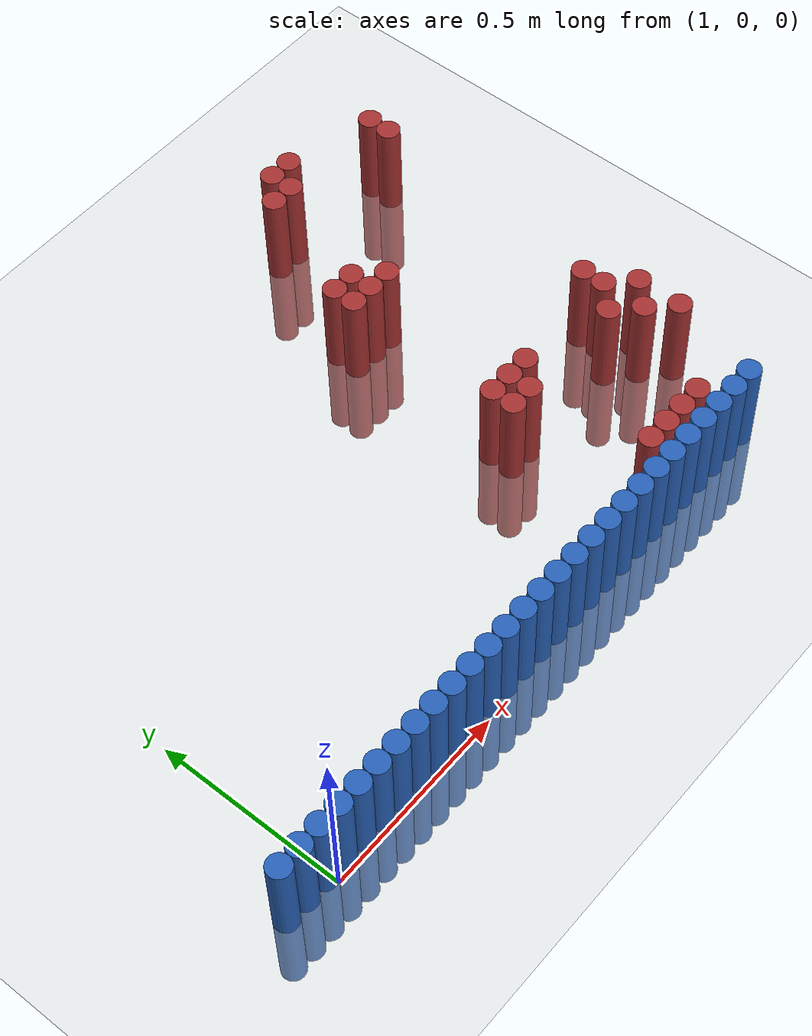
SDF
<sdf version="1.6">
 <world name="default">
  <model name="ground_plane">
   <static>1</static>
   <link name="link">
    <collision name="collision">
     <geometry><plane><normal>0 0 1</normal><size>100 100</size></plane></geometry>
     <surface><friction><ode><mu>100</mu><mu2>50</mu2></ode></friction></surface>
    </collision>
    <visual name="visual">
     <cast_shadows>0</cast_shadows>
     <geometry><plane><normal>0 0 1</normal><size>100 100</size></plane></geometry>
     <material>
      <script><uri>file://media/materials/scripts/gazebo.material</uri><name>Gazebo/Grey</name></script>
     </material>
    </visual>
   </link>
  </model>
  <model name="unit_cylinder_55">
   <static>1</static>
   <pose>0.870000 0.030000 0.000000 0.000000 0.000000 0.000000</pose>
   <link name="link">
    <inertial>
     <mass>1</mass>
     <inertia><ixx>0.145833</ixx><ixy>0</ixy><ixz>0</ixz><iyy>0.145833</iyy><iyz>0</iyz><izz>0.125</izz></inertia>
    </inertial>
    <collision name="collision">
     <geometry><cylinder><radius>0.030000</radius><length>0.5</length></cylinder></geometry>
    </collision>
    <visual name="visual">
     <geometry><cylinder><radius>0.030000</radius><length>0.5</length></cylinder></geometry>
     <material>
      <ambient>0.152000 0.379000 0.720000 1</ambient>
      <diffuse>0.152000 0.379000 0.720000 1</diffuse>
     </material>
     <material>
      <script><name>Gazebo/Grey</name><uri>file://media/materials/scripts/gazebo.material</uri></script>
     </material>
    </visual>
   </link>
  </model>
  <model name="unit_cylinder_57">
   <static>1</static>
   <pose>0.930000 0.030000 0.000000 0.000000 0.000000 0.000000</pose>
   <link name="link">
    <inertial>
     <mass>1</mass>
     <inertia><ixx>0.145833</ixx><ixy>0</ixy><ixz>0</ixz><iyy>0.145833</iyy><iyz>0</iyz><izz>0.125</izz></inertia>
    </inertial>
    <collision name="collision">
     <geometry><cylinder><radius>0.030000</radius><length>0.5</length></cylinder></geometry>
    </collision>
    <visual name="visual">
     <geometry><cylinder><radius>0.030000</radius><length>0.5</length></cylinder></geometry>
     <material>
      <ambient>0.152000 0.379000 0.720000 1</ambient>
      <diffuse>0.152000 0.379000 0.720000 1</diffuse>
     </material>
     <material>
      <script><name>Gazebo/Grey</name><uri>file://media/materials/scripts/gazebo.material</uri></script>
     </material>
    </visual>
   </link>
  </model>
  <model name="unit_cylinder_59">
   <static>1</static>
   <pose>0.990000 0.030000 0.000000 0.000000 0.000000 0.000000</pose>
   <link name="link">
    <inertial>
     <mass>1</mass>
     <inertia><ixx>0.145833</ixx><ixy>0</ixy><ixz>0</ixz><iyy>0.145833</iyy><iyz>0</iyz><izz>0.125</izz></inertia>
    </inertial>
    <collision name="collision">
     <geometry><cylinder><radius>0.030000</radius><length>0.5</length></cylinder></geometry>
    </collision>
    <visual name="visual">
     <geometry><cylinder><radius>0.030000</radius><length>0.5</length></cylinder></geometry>
     <material>
      <ambient>0.152000 0.379000 0.720000 1</ambient>
      <diffuse>0.152000 0.379000 0.720000 1</diffuse>
     </material>
     <material>
      <script><name>Gazebo/Grey</name><uri>file://media/materials/scripts/gazebo.material</uri></script>
     </material>
    </visual>
   </link>
  </model>
  <model name="unit_cylinder_61">
   <static>1</static>
   <pose>1.050000 0.030000 0.000000 0.000000 0.000000 0.000000</pose>
   <link name="link">
    <inertial>
     <mass>1</mass>
     <inertia><ixx>0.145833</ixx><ixy>0</ixy><ixz>0</ixz><iyy>0.145833</iyy><iyz>0</iyz><izz>0.125</izz></inertia>
    </inertial>
    <collision name="collision">
     <geometry><cylinder><radius>0.030000</radius><length>0.5</length></cylinder></geometry>
    </collision>
    <visual name="visual">
     <geometry><cylinder><radius>0.030000</radius><length>0.5</length></cylinder></geometry>
     <material>
      <ambient>0.152000 0.379000 0.720000 1</ambient>
      <diffuse>0.152000 0.379000 0.720000 1</diffuse>
     </material>
     <material>
      <script><name>Gazebo/Grey</name><uri>file://media/materials/scripts/gazebo.material</uri></script>
     </material>
    </visual>
   </link>
  </model>
  <model name="unit_cylinder_63">
   <static>1</static>
   <pose>1.110000 0.030000 0.000000 0.000000 0.000000 0.000000</pose>
   <link name="link">
    <inertial>
     <mass>1</mass>
     <inertia><ixx>0.145833</ixx><ixy>0</ixy><ixz>0</ixz><iyy>0.145833</iyy><iyz>0</iyz><izz>0.125</izz></inertia>
    </inertial>
    <collision name="collision">
     <geometry><cylinder><radius>0.030000</radius><length>0.5</length></cylinder></geometry>
    </collision>
    <visual name="visual">
     <geometry><cylinder><radius>0.030000</radius><length>0.5</length></cylinder></geometry>
     <material>
      <ambient>0.152000 0.379000 0.720000 1</ambient>
      <diffuse>0.152000 0.379000 0.720000 1</diffuse>
     </material>
     <material>
      <script><name>Gazebo/Grey</name><uri>file://media/materials/scripts/gazebo.material</uri></script>
     </material>
    </visual>
   </link>
  </model>
  <model name="unit_cylinder_65">
   <static>1</static>
   <pose>1.170000 0.030000 0.000000 0.000000 0.000000 0.000000</pose>
   <link name="link">
    <inertial>
     <mass>1</mass>
     <inertia><ixx>0.145833</ixx><ixy>0</ixy><ixz>0</ixz><iyy>0.145833</iyy><iyz>0</iyz><izz>0.125</izz></inertia>
    </inertial>
    <collision name="collision">
     <geometry><cylinder><radius>0.030000</radius><length>0.5</length></cylinder></geometry>
    </collision>
    <visual name="visual">
     <geometry><cylinder><radius>0.030000</radius><length>0.5</length></cylinder></geometry>
     <material>
      <ambient>0.152000 0.379000 0.720000 1</ambient>
      <diffuse>0.152000 0.379000 0.720000 1</diffuse>
     </material>
     <material>
      <script><name>Gazebo/Grey</name><uri>file://media/materials/scripts/gazebo.material</uri></script>
     </material>
    </visual>
   </link>
  </model>
  <model name="unit_cylinder_67">
   <static>1</static>
   <pose>1.230000 0.030000 0.000000 0.000000 0.000000 0.000000</pose>
   <link name="link">
    <inertial>
     <mass>1</mass>
     <inertia><ixx>0.145833</ixx><ixy>0</ixy><ixz>0</ixz><iyy>0.145833</iyy><iyz>0</iyz><izz>0.125</izz></inertia>
    </inertial>
    <collision name="collision">
     <geometry><cylinder><radius>0.030000</radius><length>0.5</length></cylinder></geometry>
    </collision>
    <visual name="visual">
     <geometry><cylinder><radius>0.030000</radius><length>0.5</length></cylinder></geometry>
     <material>
      <ambient>0.152000 0.379000 0.720000 1</ambient>
      <diffuse>0.152000 0.379000 0.720000 1</diffuse>
     </material>
     <material>
      <script><name>Gazebo/Grey</name><uri>file://media/materials/scripts/gazebo.material</uri></script>
     </material>
    </visual>
   </link>
  </model>
  <model name="unit_cylinder_69">
   <static>1</static>
   <pose>1.290000 0.030000 0.000000 0.000000 0.000000 0.000000</pose>
   <link name="link">
    <inertial>
     <mass>1</mass>
     <inertia><ixx>0.145833</ixx><ixy>0</ixy><ixz>0</ixz><iyy>0.145833</iyy><iyz>0</iyz><izz>0.125</izz></inertia>
    </inertial>
    <collision name="collision">
     <geometry><cylinder><radius>0.030000</radius><length>0.5</length></cylinder></geometry>
    </collision>
    <visual name="visual">
     <geometry><cylinder><radius>0.030000</radius><length>0.5</length></cylinder></geometry>
     <material>
      <ambient>0.152000 0.379000 0.720000 1</ambient>
      <diffuse>0.152000 0.379000 0.720000 1</diffuse>
     </material>
     <material>
      <script><name>Gazebo/Grey</name><uri>file://media/materials/scripts/gazebo.material</uri></script>
     </material>
    </visual>
   </link>
  </model>
  <model name="unit_cylinder_71">
   <static>1</static>
   <pose>1.350000 0.030000 0.000000 0.000000 0.000000 0.000000</pose>
   <link name="link">
    <inertial>
     <mass>1</mass>
     <inertia><ixx>0.145833</ixx><ixy>0</ixy><ixz>0</ixz><iyy>0.145833</iyy><iyz>0</iyz><izz>0.125</izz></inertia>
    </inertial>
    <collision name="collision">
     <geometry><cylinder><radius>0.030000</radius><length>0.5</length></cylinder></geometry>
    </collision>
    <visual name="visual">
     <geometry><cylinder><radius>0.030000</radius><length>0.5</length></cylinder></geometry>
     <material>
      <ambient>0.152000 0.379000 0.720000 1</ambient>
      <diffuse>0.152000 0.379000 0.720000 1</diffuse>
     </material>
     <material>
      <script><name>Gazebo/Grey</name><uri>file://media/materials/scripts/gazebo.material</uri></script>
     </material>
    </visual>
   </link>
  </model>
  <model name="unit_cylinder_73">
   <static>1</static>
   <pose>1.410000 0.030000 0.000000 0.000000 0.000000 0.000000</pose>
   <link name="link">
    <inertial>
     <mass>1</mass>
     <inertia><ixx>0.145833</ixx><ixy>0</ixy><ixz>0</ixz><iyy>0.145833</iyy><iyz>0</iyz><izz>0.125</izz></inertia>
    </inertial>
    <collision name="collision">
     <geometry><cylinder><radius>0.030000</radius><length>0.5</length></cylinder></geometry>
    </collision>
    <visual name="visual">
     <geometry><cylinder><radius>0.030000</radius><length>0.5</length></cylinder></geometry>
     <material>
      <ambient>0.152000 0.379000 0.720000 1</ambient>
      <diffuse>0.152000 0.379000 0.720000 1</diffuse>
     </material>
     <material>
      <script><name>Gazebo/Grey</name><uri>file://media/materials/scripts/gazebo.material</uri></script>
     </material>
    </visual>
   </link>
  </model>
  <model name="unit_cylinder_75">
   <static>1</static>
   <pose>1.470000 0.030000 0.000000 0.000000 0.000000 0.000000</pose>
   <link name="link">
    <inertial>
     <mass>1</mass>
     <inertia><ixx>0.145833</ixx><ixy>0</ixy><ixz>0</ixz><iyy>0.145833</iyy><iyz>0</iyz><izz>0.125</izz></inertia>
    </inertial>
    <collision name="collision">
     <geometry><cylinder><radius>0.030000</radius><length>0.5</length></cylinder></geometry>
    </collision>
    <visual name="visual">
     <geometry><cylinder><radius>0.030000</radius><length>0.5</length></cylinder></geometry>
     <material>
      <ambient>0.152000 0.379000 0.720000 1</ambient>
      <diffuse>0.152000 0.379000 0.720000 1</diffuse>
     </material>
     <material>
      <script><name>Gazebo/Grey</name><uri>file://media/materials/scripts/gazebo.material</uri></script>
     </material>
    </visual>
   </link>
  </model>
  <model name="unit_cylinder_77">
   <static>1</static>
   <pose>1.530000 0.030000 0.000000 0.000000 0.000000 0.000000</pose>
   <link name="link">
    <inertial>
     <mass>1</mass>
     <inertia><ixx>0.145833</ixx><ixy>0</ixy><ixz>0</ixz><iyy>0.145833</iyy><iyz>0</iyz><izz>0.125</izz></inertia>
    </inertial>
    <collision name="collision">
     <geometry><cylinder><radius>0.030000</radius><length>0.5</length></cylinder></geometry>
    </collision>
    <visual name="visual">
     <geometry><cylinder><radius>0.030000</radius><length>0.5</length></cylinder></geometry>
     <material>
      <ambient>0.152000 0.379000 0.720000 1</ambient>
      <diffuse>0.152000 0.379000 0.720000 1</diffuse>
     </material>
     <material>
      <script><name>Gazebo/Grey</name><uri>file://media/materials/scripts/gazebo.material</uri></script>
     </material>
    </visual>
   </link>
  </model>
  <model name="unit_cylinder_79">
   <static>1</static>
   <pose>1.590000 0.030000 0.000000 0.000000 0.000000 0.000000</pose>
   <link name="link">
    <inertial>
     <mass>1</mass>
     <inertia><ixx>0.145833</ixx><ixy>0</ixy><ixz>0</ixz><iyy>0.145833</iyy><iyz>0</iyz><izz>0.125</izz></inertia>
    </inertial>
    <collision name="collision">
     <geometry><cylinder><radius>0.030000</radius><length>0.5</length></cylinder></geometry>
    </collision>
    <visual name="visual">
     <geometry><cylinder><radius>0.030000</radius><length>0.5</length></cylinder></geometry>
     <material>
      <ambient>0.152000 0.379000 0.720000 1</ambient>
      <diffuse>0.152000 0.379000 0.720000 1</diffuse>
     </material>
     <material>
      <script><name>Gazebo/Grey</name><uri>file://media/materials/scripts/gazebo.material</uri></script>
     </material>
    </visual>
   </link>
  </model>
  <model name="unit_cylinder_81">
   <static>1</static>
   <pose>1.650000 0.030000 0.000000 0.000000 0.000000 0.000000</pose>
   <link name="link">
    <inertial>
     <mass>1</mass>
     <inertia><ixx>0.145833</ixx><ixy>0</ixy><ixz>0</ixz><iyy>0.145833</iyy><iyz>0</iyz><izz>0.125</izz></inertia>
    </inertial>
    <collision name="collision">
     <geometry><cylinder><radius>0.030000</radius><length>0.5</length></cylinder></geometry>
    </collision>
    <visual name="visual">
     <geometry><cylinder><radius>0.030000</radius><length>0.5</length></cylinder></geometry>
     <material>
      <ambient>0.152000 0.379000 0.720000 1</ambient>
      <diffuse>0.152000 0.379000 0.720000 1</diffuse>
     </material>
     <material>
      <script><name>Gazebo/Grey</name><uri>file://media/materials/scripts/gazebo.material</uri></script>
     </material>
    </visual>
   </link>
  </model>
  <model name="unit_cylinder_83">
   <static>1</static>
   <pose>1.710000 0.030000 0.000000 0.000000 0.000000 0.000000</pose>
   <link name="link">
    <inertial>
     <mass>1</mass>
     <inertia><ixx>0.145833</ixx><ixy>0</ixy><ixz>0</ixz><iyy>0.145833</iyy><iyz>0</iyz><izz>0.125</izz></inertia>
    </inertial>
    <collision name="collision">
     <geometry><cylinder><radius>0.030000</radius><length>0.5</length></cylinder></geometry>
    </collision>
    <visual name="visual">
     <geometry><cylinder><radius>0.030000</radius><length>0.5</length></cylinder></geometry>
     <material>
      <ambient>0.152000 0.379000 0.720000 1</ambient>
      <diffuse>0.152000 0.379000 0.720000 1</diffuse>
     </material>
     <material>
      <script><name>Gazebo/Grey</name><uri>file://media/materials/scripts/gazebo.material</uri></script>
     </material>
    </visual>
   </link>
  </model>
  <model name="unit_cylinder_85">
   <static>1</static>
   <pose>1.770000 0.030000 0.000000 0.000000 0.000000 0.000000</pose>
   <link name="link">
    <inertial>
     <mass>1</mass>
     <inertia><ixx>0.145833</ixx><ixy>0</ixy><ixz>0</ixz><iyy>0.145833</iyy><iyz>0</iyz><izz>0.125</izz></inertia>
    </inertial>
    <collision name="collision">
     <geometry><cylinder><radius>0.030000</radius><length>0.5</length></cylinder></geometry>
    </collision>
    <visual name="visual">
     <geometry><cylinder><radius>0.030000</radius><length>0.5</length></cylinder></geometry>
     <material>
      <ambient>0.152000 0.379000 0.720000 1</ambient>
      <diffuse>0.152000 0.379000 0.720000 1</diffuse>
     </material>
     <material>
      <script><name>Gazebo/Grey</name><uri>file://media/materials/scripts/gazebo.material</uri></script>
     </material>
    </visual>
   </link>
  </model>
  <model name="unit_cylinder_87">
   <static>1</static>
   <pose>1.830000 0.030000 0.000000 0.000000 0.000000 0.000000</pose>
   <link name="link">
    <inertial>
     <mass>1</mass>
     <inertia><ixx>0.145833</ixx><ixy>0</ixy><ixz>0</ixz><iyy>0.145833</iyy><iyz>0</iyz><izz>0.125</izz></inertia>
    </inertial>
    <collision name="collision">
     <geometry><cylinder><radius>0.030000</radius><length>0.5</length></cylinder></geometry>
    </collision>
    <visual name="visual">
     <geometry><cylinder><radius>0.030000</radius><length>0.5</length></cylinder></geometry>
     <material>
      <ambient>0.152000 0.379000 0.720000 1</ambient>
      <diffuse>0.152000 0.379000 0.720000 1</diffuse>
     </material>
     <material>
      <script><name>Gazebo/Grey</name><uri>file://media/materials/scripts/gazebo.material</uri></script>
     </material>
    </visual>
   </link>
  </model>
  <model name="unit_cylinder_89">
   <static>1</static>
   <pose>1.890000 0.030000 0.000000 0.000000 0.000000 0.000000</pose>
   <link name="link">
    <inertial>
     <mass>1</mass>
     <inertia><ixx>0.145833</ixx><ixy>0</ixy><ixz>0</ixz><iyy>0.145833</iyy><iyz>0</iyz><izz>0.125</izz></inertia>
    </inertial>
    <collision name="collision">
     <geometry><cylinder><radius>0.030000</radius><length>0.5</length></cylinder></geometry>
    </collision>
    <visual name="visual">
     <geometry><cylinder><radius>0.030000</radius><length>0.5</length></cylinder></geometry>
     <material>
      <ambient>0.152000 0.379000 0.720000 1</ambient>
      <diffuse>0.152000 0.379000 0.720000 1</diffuse>
     </material>
     <material>
      <script><name>Gazebo/Grey</name><uri>file://media/materials/scripts/gazebo.material</uri></script>
     </material>
    </visual>
   </link>
  </model>
  <model name="unit_cylinder_91">
   <static>1</static>
   <pose>1.950000 0.030000 0.000000 0.000000 0.000000 0.000000</pose>
   <link name="link">
    <inertial>
     <mass>1</mass>
     <inertia><ixx>0.145833</ixx><ixy>0</ixy><ixz>0</ixz><iyy>0.145833</iyy><iyz>0</iyz><izz>0.125</izz></inertia>
    </inertial>
    <collision name="collision">
     <geometry><cylinder><radius>0.030000</radius><length>0.5</length></cylinder></geometry>
    </collision>
    <visual name="visual">
     <geometry><cylinder><radius>0.030000</radius><length>0.5</length></cylinder></geometry>
     <material>
      <ambient>0.152000 0.379000 0.720000 1</ambient>
      <diffuse>0.152000 0.379000 0.720000 1</diffuse>
     </material>
     <material>
      <script><name>Gazebo/Grey</name><uri>file://media/materials/scripts/gazebo.material</uri></script>
     </material>
    </visual>
   </link>
  </model>
  <model name="unit_cylinder_93">
   <static>1</static>
   <pose>2.010000 0.030000 0.000000 0.000000 0.000000 0.000000</pose>
   <link name="link">
    <inertial>
     <mass>1</mass>
     <inertia><ixx>0.145833</ixx><ixy>0</ixy><ixz>0</ixz><iyy>0.145833</iyy><iyz>0</iyz><izz>0.125</izz></inertia>
    </inertial>
    <collision name="collision">
     <geometry><cylinder><radius>0.030000</radius><length>0.5</length></cylinder></geometry>
    </collision>
    <visual name="visual">
     <geometry><cylinder><radius>0.030000</radius><length>0.5</length></cylinder></geometry>
     <material>
      <ambient>0.152000 0.379000 0.720000 1</ambient>
      <diffuse>0.152000 0.379000 0.720000 1</diffuse>
     </material>
     <material>
      <script><name>Gazebo/Grey</name><uri>file://media/materials/scripts/gazebo.material</uri></script>
     </material>
    </visual>
   </link>
  </model>
  <model name="unit_cylinder_198">
   <static>1</static>
   <pose>2.250000 1.290000 0.000000 0.000000 0.000000 0.000000</pose>
   <link name="link">
    <inertial>
     <mass>1</mass>
     <inertia><ixx>0.145833</ixx><ixy>0</ixy><ixz>0</ixz><iyy>0.145833</iyy><iyz>0</iyz><izz>0.125</izz></inertia>
    </inertial>
    <collision name="collision">
     <geometry><cylinder><radius>0.030000</radius><length>0.5</length></cylinder></geometry>
    </collision>
    <visual name="visual">
     <geometry><cylinder><radius>0.030000</radius><length>0.5</length></cylinder></geometry>
     <material>
      <ambient>0.648000 0.192000 0.192000 1</ambient>
      <diffuse>0.648000 0.192000 0.192000 1</diffuse>
     </material>
     <material>
      <script><name>Gazebo/Grey</name><uri>file://media/materials/scripts/gazebo.material</uri></script>
     </material>
    </visual>
   </link>
  </model>
  <model name="unit_cylinder_199">
   <static>1</static>
   <pose>2.310000 1.290000 0.000000 0.000000 0.000000 0.000000</pose>
   <link name="link">
    <inertial>
     <mass>1</mass>
     <inertia><ixx>0.145833</ixx><ixy>0</ixy><ixz>0</ixz><iyy>0.145833</iyy><iyz>0</iyz><izz>0.125</izz></inertia>
    </inertial>
    <collision name="collision">
     <geometry><cylinder><radius>0.030000</radius><length>0.5</length></cylinder></geometry>
    </collision>
    <visual name="visual">
     <geometry><cylinder><radius>0.030000</radius><length>0.5</length></cylinder></geometry>
     <material>
      <ambient>0.648000 0.192000 0.192000 1</ambient>
      <diffuse>0.648000 0.192000 0.192000 1</diffuse>
     </material>
     <material>
      <script><name>Gazebo/Grey</name><uri>file://media/materials/scripts/gazebo.material</uri></script>
     </material>
    </visual>
   </link>
  </model>
  <model name="unit_cylinder_204">
   <static>1</static>
   <pose>2.190000 1.230000 0.000000 0.000000 0.000000 0.000000</pose>
   <link name="link">
    <inertial>
     <mass>1</mass>
     <inertia><ixx>0.145833</ixx><ixy>0</ixy><ixz>0</ixz><iyy>0.145833</iyy><iyz>0</iyz><izz>0.125</izz></inertia>
    </inertial>
    <collision name="collision">
     <geometry><cylinder><radius>0.030000</radius><length>0.5</length></cylinder></geometry>
    </collision>
    <visual name="visual">
     <geometry><cylinder><radius>0.030000</radius><length>0.5</length></cylinder></geometry>
     <material>
      <ambient>0.648000 0.192000 0.192000 1</ambient>
      <diffuse>0.648000 0.192000 0.192000 1</diffuse>
     </material>
     <material>
      <script><name>Gazebo/Grey</name><uri>file://media/materials/scripts/gazebo.material</uri></script>
     </material>
    </visual>
   </link>
  </model>
  <model name="unit_cylinder_205">
   <static>1</static>
   <pose>2.250000 1.230000 0.000000 0.000000 0.000000 0.000000</pose>
   <link name="link">
    <inertial>
     <mass>1</mass>
     <inertia><ixx>0.145833</ixx><ixy>0</ixy><ixz>0</ixz><iyy>0.145833</iyy><iyz>0</iyz><izz>0.125</izz></inertia>
    </inertial>
    <collision name="collision">
     <geometry><cylinder><radius>0.030000</radius><length>0.5</length></cylinder></geometry>
    </collision>
    <visual name="visual">
     <geometry><cylinder><radius>0.030000</radius><length>0.5</length></cylinder></geometry>
     <material>
      <ambient>0.648000 0.192000 0.192000 1</ambient>
      <diffuse>0.648000 0.192000 0.192000 1</diffuse>
     </material>
     <material>
      <script><name>Gazebo/Grey</name><uri>file://media/materials/scripts/gazebo.material</uri></script>
     </material>
    </visual>
   </link>
  </model>
  <model name="unit_cylinder_206">
   <static>1</static>
   <pose>2.550000 1.230000 0.000000 0.000000 0.000000 0.000000</pose>
   <link name="link">
    <inertial>
     <mass>1</mass>
     <inertia><ixx>0.145833</ixx><ixy>0</ixy><ixz>0</ixz><iyy>0.145833</iyy><iyz>0</iyz><izz>0.125</izz></inertia>
    </inertial>
    <collision name="collision">
     <geometry><cylinder><radius>0.030000</radius><length>0.5</length></cylinder></geometry>
    </collision>
    <visual name="visual">
     <geometry><cylinder><radius>0.030000</radius><length>0.5</length></cylinder></geometry>
     <material>
      <ambient>0.648000 0.192000 0.192000 1</ambient>
      <diffuse>0.648000 0.192000 0.192000 1</diffuse>
     </material>
     <material>
      <script><name>Gazebo/Grey</name><uri>file://media/materials/scripts/gazebo.material</uri></script>
     </material>
    </visual>
   </link>
  </model>
  <model name="unit_cylinder_209">
   <static>1</static>
   <pose>2.550000 1.170000 0.000000 0.000000 0.000000 0.000000</pose>
   <link name="link">
    <inertial>
     <mass>1</mass>
     <inertia><ixx>0.145833</ixx><ixy>0</ixy><ixz>0</ixz><iyy>0.145833</iyy><iyz>0</iyz><izz>0.125</izz></inertia>
    </inertial>
    <collision name="collision">
     <geometry><cylinder><radius>0.030000</radius><length>0.5</length></cylinder></geometry>
    </collision>
    <visual name="visual">
     <geometry><cylinder><radius>0.030000</radius><length>0.5</length></cylinder></geometry>
     <material>
      <ambient>0.648000 0.192000 0.192000 1</ambient>
      <diffuse>0.648000 0.192000 0.192000 1</diffuse>
     </material>
     <material>
      <script><name>Gazebo/Grey</name><uri>file://media/materials/scripts/gazebo.material</uri></script>
     </material>
    </visual>
   </link>
  </model>
  <model name="unit_cylinder_214">
   <static>1</static>
   <pose>2.070000 0.930000 0.000000 0.000000 0.000000 0.000000</pose>
   <link name="link">
    <inertial>
     <mass>1</mass>
     <inertia><ixx>0.145833</ixx><ixy>0</ixy><ixz>0</ixz><iyy>0.145833</iyy><iyz>0</iyz><izz>0.125</izz></inertia>
    </inertial>
    <collision name="collision">
     <geometry><cylinder><radius>0.030000</radius><length>0.5</length></cylinder></geometry>
    </collision>
    <visual name="visual">
     <geometry><cylinder><radius>0.030000</radius><length>0.5</length></cylinder></geometry>
     <material>
      <ambient>0.648000 0.192000 0.192000 1</ambient>
      <diffuse>0.648000 0.192000 0.192000 1</diffuse>
     </material>
     <material>
      <script><name>Gazebo/Grey</name><uri>file://media/materials/scripts/gazebo.material</uri></script>
     </material>
    </visual>
   </link>
  </model>
  <model name="unit_cylinder_215">
   <static>1</static>
   <pose>2.130000 0.930000 0.000000 0.000000 0.000000 0.000000</pose>
   <link name="link">
    <inertial>
     <mass>1</mass>
     <inertia><ixx>0.145833</ixx><ixy>0</ixy><ixz>0</ixz><iyy>0.145833</iyy><iyz>0</iyz><izz>0.125</izz></inertia>
    </inertial>
    <collision name="collision">
     <geometry><cylinder><radius>0.030000</radius><length>0.5</length></cylinder></geometry>
    </collision>
    <visual name="visual">
     <geometry><cylinder><radius>0.030000</radius><length>0.5</length></cylinder></geometry>
     <material>
      <ambient>0.648000 0.192000 0.192000 1</ambient>
      <diffuse>0.648000 0.192000 0.192000 1</diffuse>
     </material>
     <material>
      <script><name>Gazebo/Grey</name><uri>file://media/materials/scripts/gazebo.material</uri></script>
     </material>
    </visual>
   </link>
  </model>
  <model name="unit_cylinder_217">
   <static>1</static>
   <pose>2.070000 0.870000 0.000000 0.000000 0.000000 0.000000</pose>
   <link name="link">
    <inertial>
     <mass>1</mass>
     <inertia><ixx>0.145833</ixx><ixy>0</ixy><ixz>0</ixz><iyy>0.145833</iyy><iyz>0</iyz><izz>0.125</izz></inertia>
    </inertial>
    <collision name="collision">
     <geometry><cylinder><radius>0.030000</radius><length>0.5</length></cylinder></geometry>
    </collision>
    <visual name="visual">
     <geometry><cylinder><radius>0.030000</radius><length>0.5</length></cylinder></geometry>
     <material>
      <ambient>0.648000 0.192000 0.192000 1</ambient>
      <diffuse>0.648000 0.192000 0.192000 1</diffuse>
     </material>
     <material>
      <script><name>Gazebo/Grey</name><uri>file://media/materials/scripts/gazebo.material</uri></script>
     </material>
    </visual>
   </link>
  </model>
  <model name="unit_cylinder_218">
   <static>1</static>
   <pose>2.130000 0.870000 0.000000 0.000000 0.000000 0.000000</pose>
   <link name="link">
    <inertial>
     <mass>1</mass>
     <inertia><ixx>0.145833</ixx><ixy>0</ixy><ixz>0</ixz><iyy>0.145833</iyy><iyz>0</iyz><izz>0.125</izz></inertia>
    </inertial>
    <collision name="collision">
     <geometry><cylinder><radius>0.030000</radius><length>0.5</length></cylinder></geometry>
    </collision>
    <visual name="visual">
     <geometry><cylinder><radius>0.030000</radius><length>0.5</length></cylinder></geometry>
     <material>
      <ambient>0.648000 0.192000 0.192000 1</ambient>
      <diffuse>0.648000 0.192000 0.192000 1</diffuse>
     </material>
     <material>
      <script><name>Gazebo/Grey</name><uri>file://media/materials/scripts/gazebo.material</uri></script>
     </material>
    </visual>
   </link>
  </model>
  <model name="unit_cylinder_219">
   <static>1</static>
   <pose>2.190000 0.870000 0.000000 0.000000 0.000000 0.000000</pose>
   <link name="link">
    <inertial>
     <mass>1</mass>
     <inertia><ixx>0.145833</ixx><ixy>0</ixy><ixz>0</ixz><iyy>0.145833</iyy><iyz>0</iyz><izz>0.125</izz></inertia>
    </inertial>
    <collision name="collision">
     <geometry><cylinder><radius>0.030000</radius><length>0.5</length></cylinder></geometry>
    </collision>
    <visual name="visual">
     <geometry><cylinder><radius>0.030000</radius><length>0.5</length></cylinder></geometry>
     <material>
      <ambient>0.648000 0.192000 0.192000 1</ambient>
      <diffuse>0.648000 0.192000 0.192000 1</diffuse>
     </material>
     <material>
      <script><name>Gazebo/Grey</name><uri>file://media/materials/scripts/gazebo.material</uri></script>
     </material>
    </visual>
   </link>
  </model>
  <model name="unit_cylinder_236">
   <static>1</static>
   <pose>2.490000 0.510000 0.000000 0.000000 0.000000 0.000000</pose>
   <link name="link">
    <inertial>
     <mass>1</mass>
     <inertia><ixx>0.145833</ixx><ixy>0</ixy><ixz>0</ixz><iyy>0.145833</iyy><iyz>0</iyz><izz>0.125</izz></inertia>
    </inertial>
    <collision name="collision">
     <geometry><cylinder><radius>0.030000</radius><length>0.5</length></cylinder></geometry>
    </collision>
    <visual name="visual">
     <geometry><cylinder><radius>0.030000</radius><length>0.5</length></cylinder></geometry>
     <material>
      <ambient>0.648000 0.192000 0.192000 1</ambient>
      <diffuse>0.648000 0.192000 0.192000 1</diffuse>
     </material>
     <material>
      <script><name>Gazebo/Grey</name><uri>file://media/materials/scripts/gazebo.material</uri></script>
     </material>
    </visual>
   </link>
  </model>
  <model name="unit_cylinder_240">
   <static>1</static>
   <pose>2.070000 0.450000 0.000000 0.000000 0.000000 0.000000</pose>
   <link name="link">
    <inertial>
     <mass>1</mass>
     <inertia><ixx>0.145833</ixx><ixy>0</ixy><ixz>0</ixz><iyy>0.145833</iyy><iyz>0</iyz><izz>0.125</izz></inertia>
    </inertial>
    <collision name="collision">
     <geometry><cylinder><radius>0.030000</radius><length>0.5</length></cylinder></geometry>
    </collision>
    <visual name="visual">
     <geometry><cylinder><radius>0.030000</radius><length>0.5</length></cylinder></geometry>
     <material>
      <ambient>0.648000 0.192000 0.192000 1</ambient>
      <diffuse>0.648000 0.192000 0.192000 1</diffuse>
     </material>
     <material>
      <script><name>Gazebo/Grey</name><uri>file://media/materials/scripts/gazebo.material</uri></script>
     </material>
    </visual>
   </link>
  </model>
  <model name="unit_cylinder_241">
   <static>1</static>
   <pose>2.130000 0.450000 0.000000 0.000000 0.000000 0.000000</pose>
   <link name="link">
    <inertial>
     <mass>1</mass>
     <inertia><ixx>0.145833</ixx><ixy>0</ixy><ixz>0</ixz><iyy>0.145833</iyy><iyz>0</iyz><izz>0.125</izz></inertia>
    </inertial>
    <collision name="collision">
     <geometry><cylinder><radius>0.030000</radius><length>0.5</length></cylinder></geometry>
    </collision>
    <visual name="visual">
     <geometry><cylinder><radius>0.030000</radius><length>0.5</length></cylinder></geometry>
     <material>
      <ambient>0.648000 0.192000 0.192000 1</ambient>
      <diffuse>0.648000 0.192000 0.192000 1</diffuse>
     </material>
     <material>
      <script><name>Gazebo/Grey</name><uri>file://media/materials/scripts/gazebo.material</uri></script>
     </material>
    </visual>
   </link>
  </model>
  <model name="unit_cylinder_242">
   <static>1</static>
   <pose>2.190000 0.450000 0.000000 0.000000 0.000000 0.000000</pose>
   <link name="link">
    <inertial>
     <mass>1</mass>
     <inertia><ixx>0.145833</ixx><ixy>0</ixy><ixz>0</ixz><iyy>0.145833</iyy><iyz>0</iyz><izz>0.125</izz></inertia>
    </inertial>
    <collision name="collision">
     <geometry><cylinder><radius>0.030000</radius><length>0.5</length></cylinder></geometry>
    </collision>
    <visual name="visual">
     <geometry><cylinder><radius>0.030000</radius><length>0.5</length></cylinder></geometry>
     <material>
      <ambient>0.648000 0.192000 0.192000 1</ambient>
      <diffuse>0.648000 0.192000 0.192000 1</diffuse>
     </material>
     <material>
      <script><name>Gazebo/Grey</name><uri>file://media/materials/scripts/gazebo.material</uri></script>
     </material>
    </visual>
   </link>
  </model>
  <model name="unit_cylinder_243">
   <static>1</static>
   <pose>2.490000 0.450000 0.000000 0.000000 0.000000 0.000000</pose>
   <link name="link">
    <inertial>
     <mass>1</mass>
     <inertia><ixx>0.145833</ixx><ixy>0</ixy><ixz>0</ixz><iyy>0.145833</iyy><iyz>0</iyz><izz>0.125</izz></inertia>
    </inertial>
    <collision name="collision">
     <geometry><cylinder><radius>0.030000</radius><length>0.5</length></cylinder></geometry>
    </collision>
    <visual name="visual">
     <geometry><cylinder><radius>0.030000</radius><length>0.5</length></cylinder></geometry>
     <material>
      <ambient>0.648000 0.192000 0.192000 1</ambient>
      <diffuse>0.648000 0.192000 0.192000 1</diffuse>
     </material>
     <material>
      <script><name>Gazebo/Grey</name><uri>file://media/materials/scripts/gazebo.material</uri></script>
     </material>
    </visual>
   </link>
  </model>
  <model name="unit_cylinder_249">
   <static>1</static>
   <pose>2.070000 0.390000 0.000000 0.000000 0.000000 0.000000</pose>
   <link name="link">
    <inertial>
     <mass>1</mass>
     <inertia><ixx>0.145833</ixx><ixy>0</ixy><ixz>0</ixz><iyy>0.145833</iyy><iyz>0</iyz><izz>0.125</izz></inertia>
    </inertial>
    <collision name="collision">
     <geometry><cylinder><radius>0.030000</radius><length>0.5</length></cylinder></geometry>
    </collision>
    <visual name="visual">
     <geometry><cylinder><radius>0.030000</radius><length>0.5</length></cylinder></geometry>
     <material>
      <ambient>0.648000 0.192000 0.192000 1</ambient>
      <diffuse>0.648000 0.192000 0.192000 1</diffuse>
     </material>
     <material>
      <script><name>Gazebo/Grey</name><uri>file://media/materials/scripts/gazebo.material</uri></script>
     </material>
    </visual>
   </link>
  </model>
  <model name="unit_cylinder_250">
   <static>1</static>
   <pose>2.130000 0.390000 0.000000 0.000000 0.000000 0.000000</pose>
   <link name="link">
    <inertial>
     <mass>1</mass>
     <inertia><ixx>0.145833</ixx><ixy>0</ixy><ixz>0</ixz><iyy>0.145833</iyy><iyz>0</iyz><izz>0.125</izz></inertia>
    </inertial>
    <collision name="collision">
     <geometry><cylinder><radius>0.030000</radius><length>0.5</length></cylinder></geometry>
    </collision>
    <visual name="visual">
     <geometry><cylinder><radius>0.030000</radius><length>0.5</length></cylinder></geometry>
     <material>
      <ambient>0.648000 0.192000 0.192000 1</ambient>
      <diffuse>0.648000 0.192000 0.192000 1</diffuse>
     </material>
     <material>
      <script><name>Gazebo/Grey</name><uri>file://media/materials/scripts/gazebo.material</uri></script>
     </material>
    </visual>
   </link>
  </model>
  <model name="unit_cylinder_251">
   <static>1</static>
   <pose>2.430000 0.390000 0.000000 0.000000 0.000000 0.000000</pose>
   <link name="link">
    <inertial>
     <mass>1</mass>
     <inertia><ixx>0.145833</ixx><ixy>0</ixy><ixz>0</ixz><iyy>0.145833</iyy><iyz>0</iyz><izz>0.125</izz></inertia>
    </inertial>
    <collision name="collision">
     <geometry><cylinder><radius>0.030000</radius><length>0.5</length></cylinder></geometry>
    </collision>
    <visual name="visual">
     <geometry><cylinder><radius>0.030000</radius><length>0.5</length></cylinder></geometry>
     <material>
      <ambient>0.648000 0.192000 0.192000 1</ambient>
      <diffuse>0.648000 0.192000 0.192000 1</diffuse>
     </material>
     <material>
      <script><name>Gazebo/Grey</name><uri>file://media/materials/scripts/gazebo.material</uri></script>
     </material>
    </visual>
   </link>
  </model>
  <model name="unit_cylinder_252">
   <static>1</static>
   <pose>2.550000 0.390000 0.000000 0.000000 0.000000 0.000000</pose>
   <link name="link">
    <inertial>
     <mass>1</mass>
     <inertia><ixx>0.145833</ixx><ixy>0</ixy><ixz>0</ixz><iyy>0.145833</iyy><iyz>0</iyz><izz>0.125</izz></inertia>
    </inertial>
    <collision name="collision">
     <geometry><cylinder><radius>0.030000</radius><length>0.5</length></cylinder></geometry>
    </collision>
    <visual name="visual">
     <geometry><cylinder><radius>0.030000</radius><length>0.5</length></cylinder></geometry>
     <material>
      <ambient>0.648000 0.192000 0.192000 1</ambient>
      <diffuse>0.648000 0.192000 0.192000 1</diffuse>
     </material>
     <material>
      <script><name>Gazebo/Grey</name><uri>file://media/materials/scripts/gazebo.material</uri></script>
     </material>
    </visual>
   </link>
  </model>
  <model name="unit_cylinder_257">
   <static>1</static>
   <pose>2.490000 0.330000 0.000000 0.000000 0.000000 0.000000</pose>
   <link name="link">
    <inertial>
     <mass>1</mass>
     <inertia><ixx>0.145833</ixx><ixy>0</ixy><ixz>0</ixz><iyy>0.145833</iyy><iyz>0</iyz><izz>0.125</izz></inertia>
    </inertial>
    <collision name="collision">
     <geometry><cylinder><radius>0.030000</radius><length>0.5</length></cylinder></geometry>
    </collision>
    <visual name="visual">
     <geometry><cylinder><radius>0.030000</radius><length>0.5</length></cylinder></geometry>
     <material>
      <ambient>0.648000 0.192000 0.192000 1</ambient>
      <diffuse>0.648000 0.192000 0.192000 1</diffuse>
     </material>
     <material>
      <script><name>Gazebo/Grey</name><uri>file://media/materials/scripts/gazebo.material</uri></script>
     </material>
    </visual>
   </link>
  </model>
  <model name="unit_cylinder_263">
   <static>1</static>
   <pose>2.550000 0.270000 0.000000 0.000000 0.000000 0.000000</pose>
   <link name="link">
    <inertial>
     <mass>1</mass>
     <inertia><ixx>0.145833</ixx><ixy>0</ixy><ixz>0</ixz><iyy>0.145833</iyy><iyz>0</iyz><izz>0.125</izz></inertia>
    </inertial>
    <collision name="collision">
     <geometry><cylinder><radius>0.030000</radius><length>0.5</length></cylinder></geometry>
    </collision>
    <visual name="visual">
     <geometry><cylinder><radius>0.030000</radius><length>0.5</length></cylinder></geometry>
     <material>
      <ambient>0.648000 0.192000 0.192000 1</ambient>
      <diffuse>0.648000 0.192000 0.192000 1</diffuse>
     </material>
     <material>
      <script><name>Gazebo/Grey</name><uri>file://media/materials/scripts/gazebo.material</uri></script>
     </material>
    </visual>
   </link>
  </model>
  <model name="unit_cylinder_280">
   <static>1</static>
   <pose>2.190000 0.090000 0.000000 0.000000 0.000000 0.000000</pose>
   <link name="link">
    <inertial>
     <mass>1</mass>
     <inertia><ixx>0.145833</ixx><ixy>0</ixy><ixz>0</ixz><iyy>0.145833</iyy><iyz>0</iyz><izz>0.125</izz></inertia>
    </inertial>
    <collision name="collision">
     <geometry><cylinder><radius>0.030000</radius><length>0.5</length></cylinder></geometry>
    </collision>
    <visual name="visual">
     <geometry><cylinder><radius>0.030000</radius><length>0.5</length></cylinder></geometry>
     <material>
      <ambient>0.648000 0.192000 0.192000 1</ambient>
      <diffuse>0.648000 0.192000 0.192000 1</diffuse>
     </material>
     <material>
      <script><name>Gazebo/Grey</name><uri>file://media/materials/scripts/gazebo.material</uri></script>
     </material>
    </visual>
   </link>
  </model>
  <model name="unit_cylinder_281">
   <static>1</static>
   <pose>2.250000 0.090000 0.000000 0.000000 0.000000 0.000000</pose>
   <link name="link">
    <inertial>
     <mass>1</mass>
     <inertia><ixx>0.145833</ixx><ixy>0</ixy><ixz>0</ixz><iyy>0.145833</iyy><iyz>0</iyz><izz>0.125</izz></inertia>
    </inertial>
    <collision name="collision">
     <geometry><cylinder><radius>0.030000</radius><length>0.5</length></cylinder></geometry>
    </collision>
    <visual name="visual">
     <geometry><cylinder><radius>0.030000</radius><length>0.5</length></cylinder></geometry>
     <material>
      <ambient>0.648000 0.192000 0.192000 1</ambient>
      <diffuse>0.648000 0.192000 0.192000 1</diffuse>
     </material>
     <material>
      <script><name>Gazebo/Grey</name><uri>file://media/materials/scripts/gazebo.material</uri></script>
     </material>
    </visual>
   </link>
  </model>
  <model name="unit_cylinder_282">
   <static>1</static>
   <pose>2.310000 0.090000 0.000000 0.000000 0.000000 0.000000</pose>
   <link name="link">
    <inertial>
     <mass>1</mass>
     <inertia><ixx>0.145833</ixx><ixy>0</ixy><ixz>0</ixz><iyy>0.145833</iyy><iyz>0</iyz><izz>0.125</izz></inertia>
    </inertial>
    <collision name="collision">
     <geometry><cylinder><radius>0.030000</radius><length>0.5</length></cylinder></geometry>
    </collision>
    <visual name="visual">
     <geometry><cylinder><radius>0.030000</radius><length>0.5</length></cylinder></geometry>
     <material>
      <ambient>0.648000 0.192000 0.192000 1</ambient>
      <diffuse>0.648000 0.192000 0.192000 1</diffuse>
     </material>
     <material>
      <script><name>Gazebo/Grey</name><uri>file://media/materials/scripts/gazebo.material</uri></script>
     </material>
    </visual>
   </link>
  </model>
  <model name="unit_cylinder_283">
   <static>1</static>
   <pose>2.370000 0.090000 0.000000 0.000000 0.000000 0.000000</pose>
   <link name="link">
    <inertial>
     <mass>1</mass>
     <inertia><ixx>0.145833</ixx><ixy>0</ixy><ixz>0</ixz><iyy>0.145833</iyy><iyz>0</iyz><izz>0.125</izz></inertia>
    </inertial>
    <collision name="collision">
     <geometry><cylinder><radius>0.030000</radius><length>0.5</length></cylinder></geometry>
    </collision>
    <visual name="visual">
     <geometry><cylinder><radius>0.030000</radius><length>0.5</length></cylinder></geometry>
     <material>
      <ambient>0.648000 0.192000 0.192000 1</ambient>
      <diffuse>0.648000 0.192000 0.192000 1</diffuse>
     </material>
     <material>
      <script><name>Gazebo/Grey</name><uri>file://media/materials/scripts/gazebo.material</uri></script>
     </material>
    </visual>
   </link>
  </model>
  <model name="unit_cylinder_295">
   <static>1</static>
   <pose>2.070000 0.030000 0.000000 0.000000 0.000000 0.000000</pose>
   <link name="link">
    <inertial>
     <mass>1</mass>
     <inertia><ixx>0.145833</ixx><ixy>0</ixy><ixz>0</ixz><iyy>0.145833</iyy><iyz>0</iyz><izz>0.125</izz></inertia>
    </inertial>
    <collision name="collision">
     <geometry><cylinder><radius>0.030000</radius><length>0.5</length></cylinder></geometry>
    </collision>
    <visual name="visual">
     <geometry><cylinder><radius>0.030000</radius><length>0.5</length></cylinder></geometry>
     <material>
      <ambient>0.152000 0.379000 0.720000 1</ambient>
      <diffuse>0.152000 0.379000 0.720000 1</diffuse>
     </material>
     <material>
      <script><name>Gazebo/Grey</name><uri>file://media/materials/scripts/gazebo.material</uri></script>
     </material>
    </visual>
   </link>
  </model>
  <model name="unit_cylinder_296">
   <static>1</static>
   <pose>2.130000 0.030000 0.000000 0.000000 0.000000 0.000000</pose>
   <link name="link">
    <inertial>
     <mass>1</mass>
     <inertia><ixx>0.145833</ixx><ixy>0</ixy><ixz>0</ixz><iyy>0.145833</iyy><iyz>0</iyz><izz>0.125</izz></inertia>
    </inertial>
    <collision name="collision">
     <geometry><cylinder><radius>0.030000</radius><length>0.5</length></cylinder></geometry>
    </collision>
    <visual name="visual">
     <geometry><cylinder><radius>0.030000</radius><length>0.5</length></cylinder></geometry>
     <material>
      <ambient>0.152000 0.379000 0.720000 1</ambient>
      <diffuse>0.152000 0.379000 0.720000 1</diffuse>
     </material>
     <material>
      <script><name>Gazebo/Grey</name><uri>file://media/materials/scripts/gazebo.material</uri></script>
     </material>
    </visual>
   </link>
  </model>
  <model name="unit_cylinder_297">
   <static>1</static>
   <pose>2.190000 0.030000 0.000000 0.000000 0.000000 0.000000</pose>
   <link name="link">
    <inertial>
     <mass>1</mass>
     <inertia><ixx>0.145833</ixx><ixy>0</ixy><ixz>0</ixz><iyy>0.145833</iyy><iyz>0</iyz><izz>0.125</izz></inertia>
    </inertial>
    <collision name="collision">
     <geometry><cylinder><radius>0.030000</radius><length>0.5</length></cylinder></geometry>
    </collision>
    <visual name="visual">
     <geometry><cylinder><radius>0.030000</radius><length>0.5</length></cylinder></geometry>
     <material>
      <ambient>0.152000 0.379000 0.720000 1</ambient>
      <diffuse>0.152000 0.379000 0.720000 1</diffuse>
     </material>
     <material>
      <script><name>Gazebo/Grey</name><uri>file://media/materials/scripts/gazebo.material</uri></script>
     </material>
    </visual>
   </link>
  </model>
  <model name="unit_cylinder_298">
   <static>1</static>
   <pose>2.250000 0.030000 0.000000 0.000000 0.000000 0.000000</pose>
   <link name="link">
    <inertial>
     <mass>1</mass>
     <inertia><ixx>0.145833</ixx><ixy>0</ixy><ixz>0</ixz><iyy>0.145833</iyy><iyz>0</iyz><izz>0.125</izz></inertia>
    </inertial>
    <collision name="collision">
     <geometry><cylinder><radius>0.030000</radius><length>0.5</length></cylinder></geometry>
    </collision>
    <visual name="visual">
     <geometry><cylinder><radius>0.030000</radius><length>0.5</length></cylinder></geometry>
     <material>
      <ambient>0.152000 0.379000 0.720000 1</ambient>
      <diffuse>0.152000 0.379000 0.720000 1</diffuse>
     </material>
     <material>
      <script><name>Gazebo/Grey</name><uri>file://media/materials/scripts/gazebo.material</uri></script>
     </material>
    </visual>
   </link>
  </model>
  <model name="unit_cylinder_299">
   <static>1</static>
   <pose>2.310000 0.030000 0.000000 0.000000 0.000000 0.000000</pose>
   <link name="link">
    <inertial>
     <mass>1</mass>
     <inertia><ixx>0.145833</ixx><ixy>0</ixy><ixz>0</ixz><iyy>0.145833</iyy><iyz>0</iyz><izz>0.125</izz></inertia>
    </inertial>
    <collision name="collision">
     <geometry><cylinder><radius>0.030000</radius><length>0.5</length></cylinder></geometry>
    </collision>
    <visual name="visual">
     <geometry><cylinder><radius>0.030000</radius><length>0.5</length></cylinder></geometry>
     <material>
      <ambient>0.152000 0.379000 0.720000 1</ambient>
      <diffuse>0.152000 0.379000 0.720000 1</diffuse>
     </material>
     <material>
      <script><name>Gazebo/Grey</name><uri>file://media/materials/scripts/gazebo.material</uri></script>
     </material>
    </visual>
   </link>
  </model>
  <model name="unit_cylinder_300">
   <static>1</static>
   <pose>2.370000 0.030000 0.000000 0.000000 0.000000 0.000000</pose>
   <link name="link">
    <inertial>
     <mass>1</mass>
     <inertia><ixx>0.145833</ixx><ixy>0</ixy><ixz>0</ixz><iyy>0.145833</iyy><iyz>0</iyz><izz>0.125</izz></inertia>
    </inertial>
    <collision name="collision">
     <geometry><cylinder><radius>0.030000</radius><length>0.5</length></cylinder></geometry>
    </collision>
    <visual name="visual">
     <geometry><cylinder><radius>0.030000</radius><length>0.5</length></cylinder></geometry>
     <material>
      <ambient>0.152000 0.379000 0.720000 1</ambient>
      <diffuse>0.152000 0.379000 0.720000 1</diffuse>
     </material>
     <material>
      <script><name>Gazebo/Grey</name><uri>file://media/materials/scripts/gazebo.material</uri></script>
     </material>
    </visual>
   </link>
  </model>
  <model name="unit_cylinder_301">
   <static>1</static>
   <pose>2.430000 0.030000 0.000000 0.000000 0.000000 0.000000</pose>
   <link name="link">
    <inertial>
     <mass>1</mass>
     <inertia><ixx>0.145833</ixx><ixy>0</ixy><ixz>0</ixz><iyy>0.145833</iyy><iyz>0</iyz><izz>0.125</izz></inertia>
    </inertial>
    <collision name="collision">
     <geometry><cylinder><radius>0.030000</radius><length>0.5</length></cylinder></geometry>
    </collision>
    <visual name="visual">
     <geometry><cylinder><radius>0.030000</radius><length>0.5</length></cylinder></geometry>
     <material>
      <ambient>0.152000 0.379000 0.720000 1</ambient>
      <diffuse>0.152000 0.379000 0.720000 1</diffuse>
     </material>
     <material>
      <script><name>Gazebo/Grey</name><uri>file://media/materials/scripts/gazebo.material</uri></script>
     </material>
    </visual>
   </link>
  </model>
  <model name="unit_cylinder_302">
   <static>1</static>
   <pose>2.490000 0.030000 0.000000 0.000000 0.000000 0.000000</pose>
   <link name="link">
    <inertial>
     <mass>1</mass>
     <inertia><ixx>0.145833</ixx><ixy>0</ixy><ixz>0</ixz><iyy>0.145833</iyy><iyz>0</iyz><izz>0.125</izz></inertia>
    </inertial>
    <collision name="collision">
     <geometry><cylinder><radius>0.030000</radius><length>0.5</length></cylinder></geometry>
    </collision>
    <visual name="visual">
     <geometry><cylinder><radius>0.030000</radius><length>0.5</length></cylinder></geometry>
     <material>
      <ambient>0.152000 0.379000 0.720000 1</ambient>
      <diffuse>0.152000 0.379000 0.720000 1</diffuse>
     </material>
     <material>
      <script><name>Gazebo/Grey</name><uri>file://media/materials/scripts/gazebo.material</uri></script>
     </material>
    </visual>
   </link>
  </model>
 </world>
</sdf>
